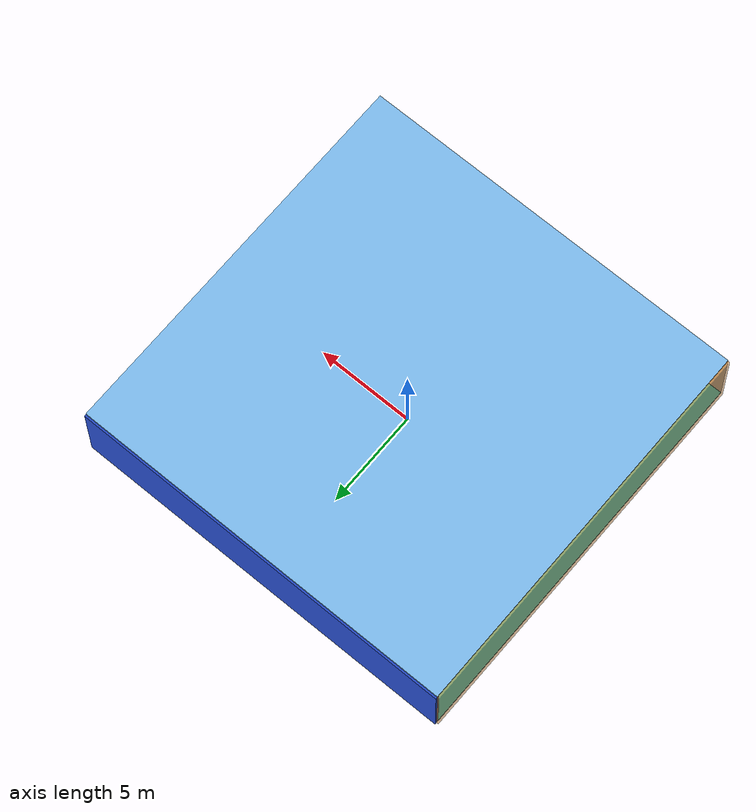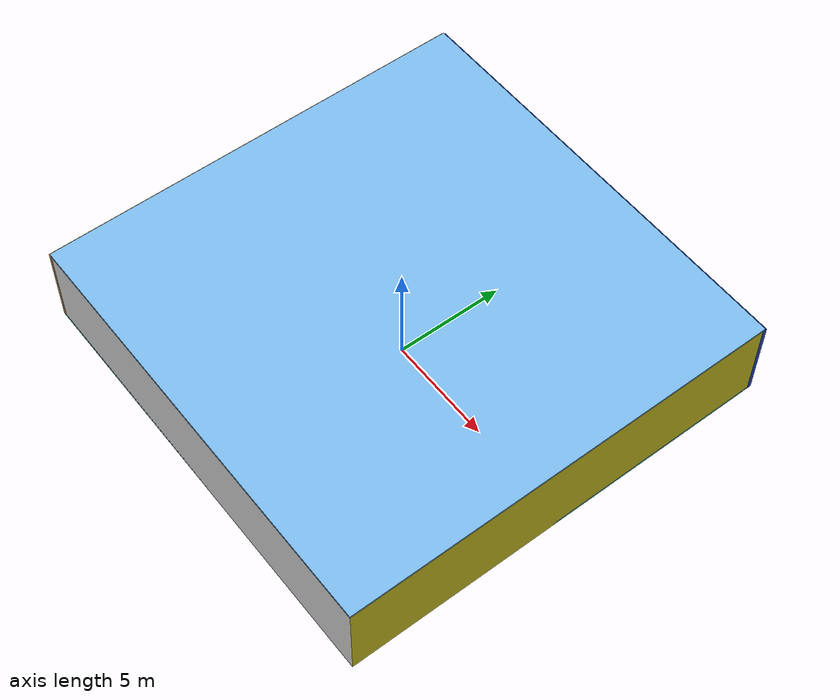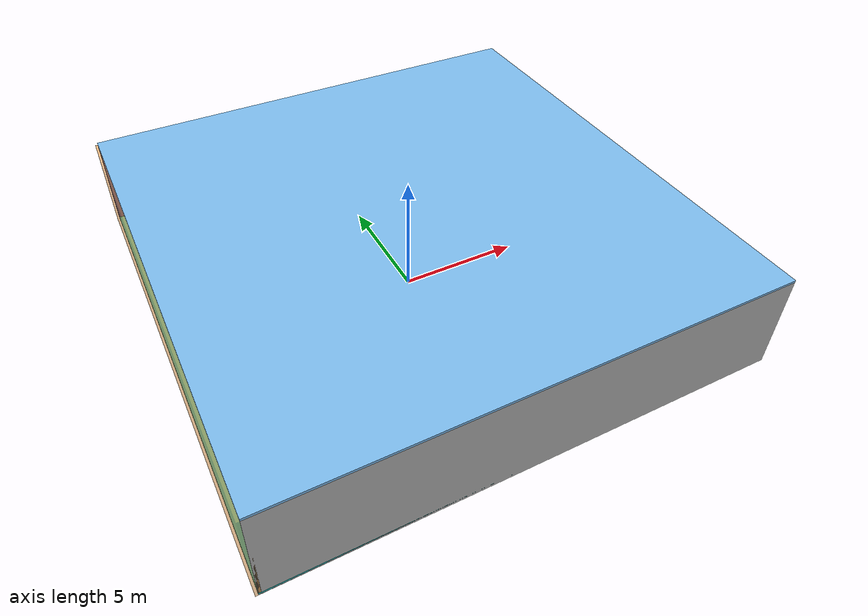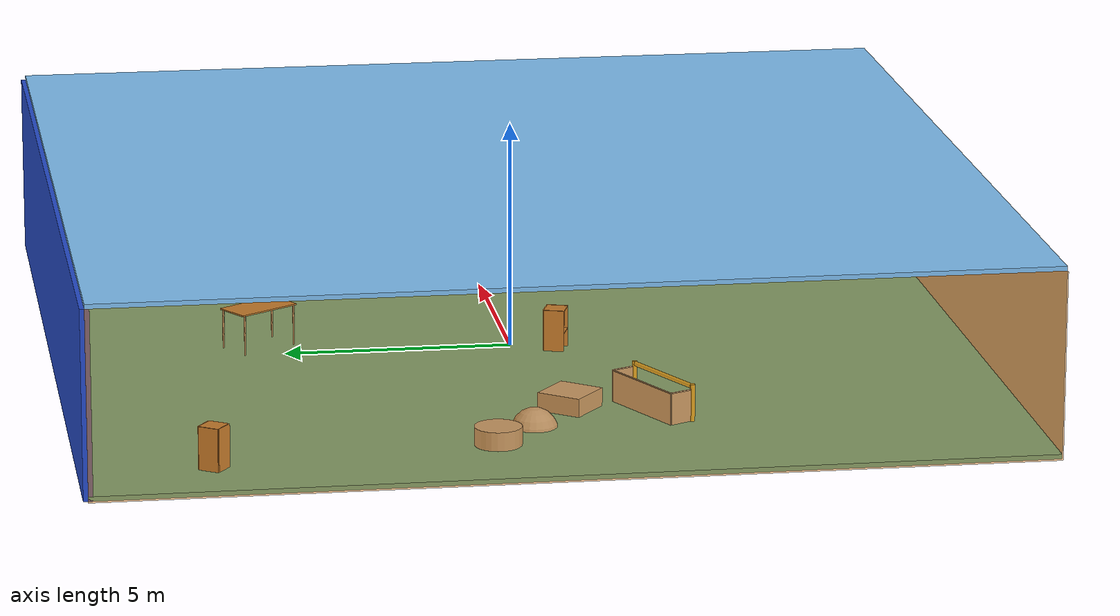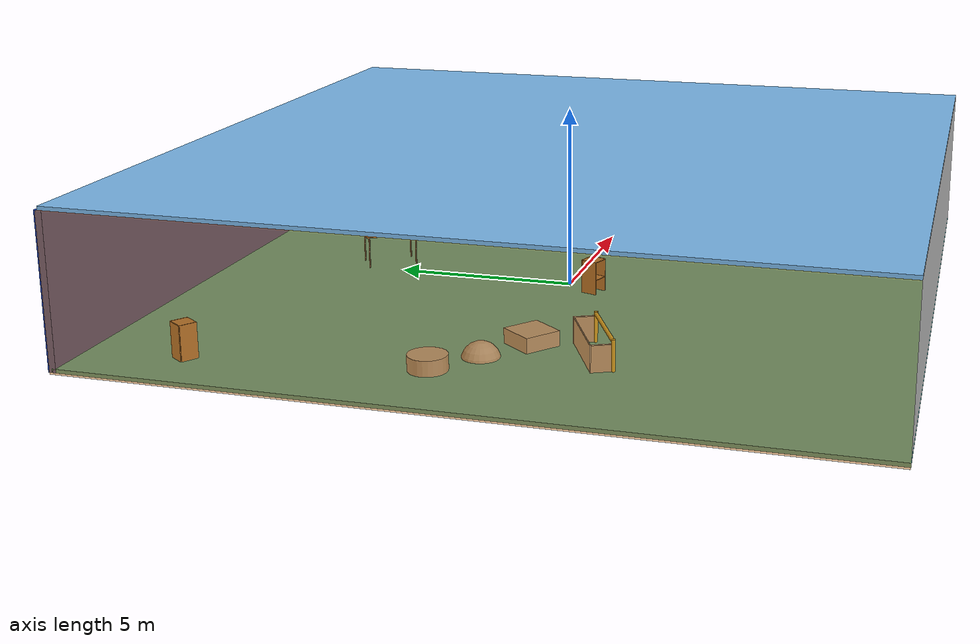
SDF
<sdf version="1.4">
 <world name="default">
  <physics type="ode">
   <max_step_size>0.001</max_step_size>
   <real_time_factor>1</real_time_factor>
   <real_time_update_rate>1000</real_time_update_rate>
   <gravity>0 0 -9.8</gravity>
  </physics>
  <scene><ambient>0.4 0.4 0.4 1</ambient><background>0.7 0.7 0.7 1</background><shadows>1</shadows></scene>
  <model name="Surrounding">
   <static>1</static>
   <link name="Ceiling">
    <collision name="Ceiling_Collision"><geometry><box><size>20 20 0.1</size></box></geometry></collision>
    <visual name="Ceiling_Visual">
     <geometry><box><size>20 20 0.1</size></box></geometry>
     <material>
      <script><uri>file://media/materials/scripts/gazebo.material</uri><name>Gazebo/SkyBlue</name></script>
     </material>
    </visual>
    <pose>0 0 4.05 0 0 0</pose>
   </link>
   <link name="Wall_South">
    <collision name="Wall_South_Collision">
     <geometry><box><size>20 0 4</size></box></geometry>
     <pose>0 0 2 0 -0 0</pose>
    </collision>
    <visual name="Wall_South_Visual">
     <pose>0 0 2 0 -0 0</pose>
     <geometry><box><size>20 0 4</size></box></geometry>
     <material>
      <script><uri>file://media/materials/scripts/gazebo.material</uri><name>Gazebo/LightOff</name></script>
     </material>
    </visual>
    <velocity_decay><linear>0</linear><angular>0</angular></velocity_decay>
    <pose>0 -10 0 0 -0 0</pose>
   </link>
   <link name="Wall_East">
    <collision name="Wall_21_Collision">
     <geometry><box><size>20 0 4</size></box></geometry>
     <pose>0 0 2 0 -0 0</pose>
    </collision>
    <visual name="Wall_21_Visual">
     <pose>0 0 2 0 -0 0</pose>
     <geometry><box><size>20 0 4</size></box></geometry>
     <material>
      <script><uri>file://media/materials/scripts/gazebo.material</uri><name>Gazebo/YellowGlow</name></script>
     </material>
    </visual>
    <velocity_decay><linear>0</linear><angular>0</angular></velocity_decay>
    <pose>10 0 0 0 -0 1.5708</pose>
   </link>
   <link name="Wall_North">
    <collision name="Wall_22_Collision">
     <geometry><box><size>20 0.2 4</size></box></geometry>
     <pose>0 0 2 0 -0 0</pose>
    </collision>
    <visual name="Wall_22_Visual">
     <pose>0 0 2 0 -0 0</pose>
     <geometry><box><size>20 0.2 4</size></box></geometry>
     <material>
      <script><uri>file://media/materials/scripts/gazebo.material</uri><name>Gazebo/Blue</name></script>
     </material>
    </visual>
    <velocity_decay><linear>0</linear><angular>0</angular></velocity_decay>
    <pose>0 10 0 0 -0 0</pose>
   </link>
   <link name="Wall_West">
    <collision name="Wall_23_Collision">
     <geometry><box><size>20 0.2 4</size></box></geometry>
     <pose>0 0 2 0 -0 0</pose>
    </collision>
    <visual name="Wall_23_Visual">
     <pose>0 0 2 0 -0 0</pose>
     <geometry><box><size>20 0.2 4</size></box></geometry>
     <material>
      <script>
       <uri>file://media/materials/scripts/gazebo.material</uri>
       <name>Gazebo/OrangeTransparent</name>
      </script>
     </material>
    </visual>
    <velocity_decay><linear>0</linear><angular>0</angular></velocity_decay>
    <pose>-10 0 0 0 0 -1.5708</pose>
   </link>
   <link name="Ground_link">
    <collision name="collision">
     <pose>0 0 .05 0 -0 0</pose>
     <geometry><box><size>20 20 0.1</size></box></geometry>
    </collision>
    <visual name="visual">
     <pose>0 0 .05 0 -0 0</pose>
     <geometry><box><size>20 20 0.1</size></box></geometry>
     <material>
      <script><uri>file://media/materials/scripts/gazebo.material</uri><name>Gazebo/Turquoise</name></script>
     </material>
    </visual>
   </link>
   <static>1</static>
  </model>
  <spherical_coordinates>
   <surface_model>EARTH_WGS84</surface_model>
   <latitude_deg>0</latitude_deg>
   <longitude_deg>0</longitude_deg>
   <elevation>0</elevation>
   <heading_deg>0</heading_deg>
  </spherical_coordinates>
  <light name="lightball_0" type="diffuse">
   <diffuse>0.8 0.8 0.8 1</diffuse>
   <specular>0.2 0.2 0.2 1</specular>
   <attenuation>
    <range>100</range>
    <constant>0.7</constant>
    <linear>0.01</linear>
    <quadratic>0.001</quadratic>
   </attenuation>
   <direction>-0.5 0.1 -0.9</direction>
   <pose>0.120564184121 0.156415062477 1.62685884706 0 0 0</pose>
  </light>
  <light name="lightball_1" type="diffuse">
   <diffuse>0.8 0.8 0.8 1</diffuse>
   <specular>0.2 0.2 0.2 1</specular>
   <attenuation>
    <range>100</range>
    <constant>0.7</constant>
    <linear>0.01</linear>
    <quadratic>0.001</quadratic>
   </attenuation>
   <direction>-0.5 0.1 -0.9</direction>
   <pose>8.41129523897 1.55225592189 0.931085236082 0 0 0</pose>
  </light>
  <light name="lightball_2" type="diffuse">
   <diffuse>0.8 0.8 0.8 1</diffuse>
   <specular>0.2 0.2 0.2 1</specular>
   <attenuation>
    <range>100</range>
    <constant>0.7</constant>
    <linear>0.01</linear>
    <quadratic>0.001</quadratic>
   </attenuation>
   <direction>-0.5 0.1 -0.9</direction>
   <pose>-1.83214279388 -0.443137406834 1.14069725064 0 0 0</pose>
  </light>
  <light name="lightball_3" type="diffuse">
   <diffuse>0.8 0.8 0.8 1</diffuse>
   <specular>0.2 0.2 0.2 1</specular>
   <attenuation>
    <range>100</range>
    <constant>0.7</constant>
    <linear>0.01</linear>
    <quadratic>0.001</quadratic>
   </attenuation>
   <direction>-0.5 0.1 -0.9</direction>
   <pose>-8.35254048172 -0.521042845749 1.20575113459 0 0 0</pose>
  </light>
  <light name="lightball_4" type="diffuse">
   <diffuse>0.8 0.8 0.8 1</diffuse>
   <specular>0.2 0.2 0.2 1</specular>
   <attenuation>
    <range>100</range>
    <constant>0.7</constant>
    <linear>0.01</linear>
    <quadratic>0.001</quadratic>
   </attenuation>
   <direction>-0.5 0.1 -0.9</direction>
   <pose>-9.14398208152 -2.13500376426 2.96275192318 0 0 0</pose>
  </light>
  <light name="lightball_5" type="diffuse">
   <diffuse>0.8 0.8 0.8 1</diffuse>
   <specular>0.2 0.2 0.2 1</specular>
   <attenuation>
    <range>100</range>
    <constant>0.7</constant>
    <linear>0.01</linear>
    <quadratic>0.001</quadratic>
   </attenuation>
   <direction>-0.5 0.1 -0.9</direction>
   <pose>6.0427565949 -1.41849852615 2.18613167909 0 0 0</pose>
  </light>
  <light name="lightball_6" type="diffuse">
   <diffuse>0.8 0.8 0.8 1</diffuse>
   <specular>0.2 0.2 0.2 1</specular>
   <attenuation>
    <range>100</range>
    <constant>0.7</constant>
    <linear>0.01</linear>
    <quadratic>0.001</quadratic>
   </attenuation>
   <direction>-0.5 0.1 -0.9</direction>
   <pose>1.91132976906 -4.08569663113 2.77279788509 0 0 0</pose>
  </light>
  <light name="lightball_7" type="diffuse">
   <diffuse>0.8 0.8 0.8 1</diffuse>
   <specular>0.2 0.2 0.2 1</specular>
   <attenuation>
    <range>100</range>
    <constant>0.7</constant>
    <linear>0.01</linear>
    <quadratic>0.001</quadratic>
   </attenuation>
   <direction>-0.5 0.1 -0.9</direction>
   <pose>-8.41922635106 -4.16220070748 2.30707270665 0 0 0</pose>
  </light>
  <light name="lightball_8" type="diffuse">
   <diffuse>0.8 0.8 0.8 1</diffuse>
   <specular>0.2 0.2 0.2 1</specular>
   <attenuation>
    <range>100</range>
    <constant>0.7</constant>
    <linear>0.01</linear>
    <quadratic>0.001</quadratic>
   </attenuation>
   <direction>-0.5 0.1 -0.9</direction>
   <pose>-6.93043471987 2.09421502522 3.33193865149 0 0 0</pose>
  </light>
  <light name="lightball_9" type="diffuse">
   <diffuse>0.8 0.8 0.8 1</diffuse>
   <specular>0.2 0.2 0.2 1</specular>
   <attenuation>
    <range>100</range>
    <constant>0.7</constant>
    <linear>0.01</linear>
    <quadratic>0.001</quadratic>
   </attenuation>
   <direction>-0.5 0.1 -0.9</direction>
   <pose>-1.69379217311 9.09301782813 1.58541685633 0 0 0</pose>
  </light>
  <light name="lightball_10" type="diffuse">
   <diffuse>0.8 0.8 0.8 1</diffuse>
   <specular>0.2 0.2 0.2 1</specular>
   <attenuation>
    <range>100</range>
    <constant>0.7</constant>
    <linear>0.01</linear>
    <quadratic>0.001</quadratic>
   </attenuation>
   <direction>-0.5 0.1 -0.9</direction>
   <pose>5.5917020928 1.80973425507 2.80842126127 0 0 0</pose>
  </light>
  <light name="lightball_11" type="diffuse">
   <diffuse>0.8 0.8 0.8 1</diffuse>
   <specular>0.2 0.2 0.2 1</specular>
   <attenuation>
    <range>100</range>
    <constant>0.7</constant>
    <linear>0.01</linear>
    <quadratic>0.001</quadratic>
   </attenuation>
   <direction>-0.5 0.1 -0.9</direction>
   <pose>0.461540340055 -5.6590833392 3.67368084761 0 0 0</pose>
  </light>
  <include>
   <uri>model://textured_shapes</uri>
   <pose>-6.48390825542 0.43420460743 0 0 0 0.900298011053</pose>
  </include>
  <include><uri>model://cabinet</uri><pose>-8.44441708458 7.32204304538 0 0 0 2.53585431375</pose></include>
  <include>
   <uri>model://robocup_3Dsim_goal</uri>
   <pose>-5.63988901232 -2.43937610797 0 0 0 2.02317530704</pose>
  </include>
  <include><uri>model://cabinet</uri><pose>-0.761634548595 -0.896101755888 0 0 0 1.23329886416</pose></include>
  <include><uri>model://table</uri><pose>0.344237280784 5.5342817862 0 0 0 2.14407322986</pose></include>
  <include><uri>model://table</uri><pose>5.57815213167 -6.48033671661 0 0 0 0.179102055324</pose></include>
  <include>
   <uri>model://robocup_3Dsim_goal</uri>
   <pose>7.7297169014 1.5952102717 0 0 0 2.35970423729</pose>
  </include>
 </world>
</sdf>

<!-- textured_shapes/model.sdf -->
<sdf version="1.6">
  <model name="textured_shapes">
    <pose>0 0 0.5 0 0 0</pose>
    <link name="box">
      <pose>0 -1.5 0 0 0 0</pose>
      <collision name="collision">
        <geometry>
          <box>
            <size>1 1 1</size>
          </box>
        </geometry>
      </collision>
      <visual name="visual">
        <geometry>
          <box>
            <size>1 1 1</size>
          </box>
        </geometry>
        <material>
          <script>
            <uri>model://../model_source/models/textured_shapes/materials/scripts</uri>
            <uri>model://../model_source/models/textured_shapes/materials/textures</uri>
            <name>TexturedShape/Squares</name>
          </script>
        </material>
      </visual>
    </link>
    <link name="sphere">
      <collision name="collision">
        <geometry>
          <sphere>
            <radius>0.5</radius>
          </sphere>
        </geometry>
      </collision>
      <visual name="visual">
        <geometry>
          <sphere>
            <radius>0.5</radius>
          </sphere>
        </geometry>
        <material>
          <script>
            <uri>model://../model_source/models/textured_shapes/materials/scripts</uri>
            <uri>model://../model_source/models/textured_shapes/materials/textures</uri>
            <name>TexturedShape/Squares</name>
          </script>
        </material>
      </visual>
    </link>
    <link name="cylinder">
      <pose>0 1.5 0 0 0 0</pose>
      <collision name="collision">
        <geometry>
          <cylinder>
            <radius>0.5</radius>
            <length>1</length>
          </cylinder>
        </geometry>
      </collision>
      <visual name="visual">
        <geometry>
          <cylinder>
            <radius>0.5</radius>
            <length>1</length>
          </cylinder>
        </geometry>
        <material>
          <script>
            <uri>model://../model_source/models/textured_shapes/materials/scripts</uri>
            <uri>model://../model_source/models/textured_shapes/materials/textures</uri>
            <name>TexturedShape/Squares</name>
          </script>
        </material>
      </visual>
    </link>
  </model>
</sdf>

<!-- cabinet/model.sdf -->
<sdf version="1.5">
  <model name="cabinet">
    <static>true</static>
    <link name="cabinet_bottom_plate">
      <inertial>
        <pose>0 0 -1 0 0 0</pose>
        <inertia>
          <ixx>2.050000</ixx>
          <ixy>0</ixy>
          <ixz>0</ixz>
          <iyy>2.050000</iyy>
          <iyz>0</iyz>
          <izz>2.050000</izz>
        </inertia>
        <mass>25.000000</mass>
      </inertial>
      <collision name="cabinet_bottom_plate_geom">
        <pose>0 0 0.010000 0 0 0</pose>
        <geometry>
          <box>
            <size>0.450000 0.450000 0.020000</size>
          </box>
        </geometry>
      </collision>
      <visual name="cabinet_bottom_plate_geom_visual">
        <pose>0 0 0.010000 0 0 0</pose>
        <geometry>
          <box>
            <size>0.450000 0.450000 0.020000</size>
          </box>
        </geometry>
        <material>
          <script>
            <uri>model://media/materials/scripts/gazebo.material</uri>
            <name>Gazebo/Wood</name>
          </script>
        </material>
      </visual>
      <collision name="cabinet_bottom_plate_geom_cabinet_back_plate">
        <pose>0.235000 0 0.510000 0 0 0</pose>
        <geometry>
          <box>
            <size>0.020000 0.450000 1.020000</size>
          </box>
        </geometry>
      </collision>
      <visual name="cabinet_bottom_plate_geom_cabinet_back_plate_visual">
        <pose>0.235000 0 0.510000 0 0 0</pose>
        <geometry>
          <box>
            <size>0.020000 0.450000 1.020000</size>
          </box>
        </geometry>
        <material>
          <script>
            <uri>model://media/materials/scripts/gazebo.material</uri>
            <name>Gazebo/Wood</name>
          </script>
        </material>
      </visual>
      <collision name="cabinet_bottom_plate_geom_cabinet_left_plate">
        <pose>0 0.235000 0.510000 0 0 0</pose>
        <geometry>
          <box>
            <size>0.450000 0.020000 1.020000</size>
          </box>
        </geometry>
      </collision>
      <visual name="cabinet_bottom_plate_geom_cabinet_left_plate_visual">
        <pose>0 0.235000 0.510000 0 0 0</pose>
        <geometry>
          <box>
            <size>0.450000 0.020000 1.020000</size>
          </box>
        </geometry>
        <material>
          <script>
            <uri>model://media/materials/scripts/gazebo.material</uri>
            <name>Gazebo/Wood</name>
          </script>
        </material>
      </visual>
      <collision name="cabinet_bottom_plate_geom_cabinet_middle_plate">
        <pose>0 0 0.510000 0 0 0</pose>
        <geometry>
          <box>
            <size>0.450000 0.450000 0.020000</size>
          </box>
        </geometry>
      </collision>
      <visual name="cabinet_bottom_plate_geom_cabinet_middle_plate_visual">
        <pose>0 0 0.510000 0 0 0</pose>
        <geometry>
          <box>
            <size>0.450000 0.450000 0.020000</size>
          </box>
        </geometry>
        <material>
          <script>
            <uri>model://media/materials/scripts/gazebo.material</uri>
            <name>Gazebo/Wood</name>
          </script>
        </material>
      </visual>
      <collision name="cabinet_bottom_plate_geom_cabinet_right_plate">
        <pose>0 -0.235000 0.510000 0 0 0</pose>
        <geometry>
          <box>
            <size>0.450000 0.020000 1.020000</size>
          </box>
        </geometry>
      </collision>
      <visual name="cabinet_bottom_plate_geom_cabinet_right_plate_visual">
        <pose>0 -0.235000 0.510000 0 0 0</pose>
        <geometry>
          <box>
            <size>0.450000 0.020000 1.020000</size>
          </box>
        </geometry>
        <material>
          <script>
            <uri>model://media/materials/scripts/gazebo.material</uri>
            <name>Gazebo/Wood</name>
          </script>
        </material>
      </visual>
      <collision name="cabinet_bottom_plate_geom_cabinet_top_plate">
        <pose>0 0 1.010000 0 0 0</pose>
        <geometry>
          <box>
            <size>0.450000 0.450000 0.020000</size>
          </box>
        </geometry>
      </collision>
      <visual name="cabinet_bottom_plate_geom_cabinet_top_plate_visual">
        <pose>0 0 1.010000 0 0 0</pose>
        <geometry>
          <box>
            <size>0.450000 0.450000 0.020000</size>
          </box>
        </geometry>
        <material>
          <script>
            <uri>model://media/materials/scripts/gazebo.material</uri>
            <name>Gazebo/Wood</name>
          </script>
        </material>
      </visual>
    </link>
  </model>
</sdf>

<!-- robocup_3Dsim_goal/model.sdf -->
<sdf version="1.5">
  <model name="robocup_3d_goal">
    <static>true</static>
    <link name="left_post">
      <pose>0 1.05 0.45 0 0 0</pose>
      <collision name="collision">
        <geometry>
          <cylinder>
            <radius>0.05</radius>
            <length>0.9</length>
          </cylinder>
        </geometry>
      </collision>
      <visual name="visual">
        <geometry>
          <cylinder>
            <radius>0.05</radius>
            <length>0.9</length>
          </cylinder>
        </geometry>
        <material>
          <script>
            <uri>file://media/materials/scripts/gazebo.material</uri>
            <name>Gazebo/ZincYellow</name>
          </script>
        </material>
      </visual>
    </link>
    <link name="left_support_horiz_lower">
      <pose>0.30 1.05 0.01 0 0 0</pose>
      <collision name="collision">
        <geometry>
          <box>
            <size>0.50 0.02 0.02</size>
          </box>
        </geometry>
      </collision>
      <visual name="visual">
        <geometry>
          <box>
            <size>0.50 0.02 0.02</size>
          </box>
        </geometry>
        <material>
          <script>
            <uri>file://media/materials/scripts/gazebo.material</uri>
            <name>Gazebo/White</name>
          </script>
        </material>
      </visual>
    </link>
    <link name="left_support_horiz_upper">
      <pose>0.30 1.05 0.79 0 0 0</pose>
      <collision name="collision">
        <geometry>
          <box>
            <size>0.50 0.02 0.02</size>
          </box>
        </geometry>
      </collision>
      <visual name="visual">
        <geometry>
          <box>
            <size>0.50 0.02 0.02</size>
          </box>
        </geometry>
        <material>
          <script>
            <uri>file://media/materials/scripts/gazebo.material</uri>
            <name>Gazebo/White</name>
          </script>
        </material>
      </visual>
    </link>
    <link name="left_support_vertical">
      <pose>0.56 1.05 0.4 0 1.5708 0</pose>
      <collision name="collision">
        <geometry>
          <box>
            <size>0.80 0.02 0.02</size>
          </box>
        </geometry>
      </collision>
      <visual name="visual">
        <geometry>
          <box>
            <size>0.80 0.02 0.02</size>
          </box>
        </geometry>
        <material>
          <script>
            <uri>file://media/materials/scripts/gazebo.material</uri>
            <name>Gazebo/White</name>
          </script>
        </material>
      </visual>
    </link>
    <link name="right_support_horiz_lower">
      <pose>0.30 -1.05 0.01 0 0 0</pose>
      <collision name="collision">
        <geometry>
          <box>
            <size>0.50 0.02 0.02</size>
          </box>
        </geometry>
      </collision>
      <visual name="visual">
        <geometry>
          <box>
            <size>0.50 0.02 0.02</size>
          </box>
        </geometry>
        <material>
          <script>
            <uri>file://media/materials/scripts/gazebo.material</uri>
            <name>Gazebo/White</name>
          </script>
        </material>
      </visual>
    </link>
    <link name="right_support_horiz_upper">
      <pose>0.30 -1.05 0.79 0 0 0</pose>
      <collision name="collision">
        <geometry>
          <box>
            <size>0.50 0.02 0.02</size>
          </box>
        </geometry>
      </collision>
      <visual name="visual">
        <geometry>
          <box>
            <size>0.50 0.02 0.02</size>
          </box>
        </geometry>
        <material>
          <script>
            <uri>file://media/materials/scripts/gazebo.material</uri>
            <name>Gazebo/White</name>
          </script>
        </material>
      </visual>
    </link>
    <link name="right_support_vertical">
      <pose>0.56 -1.05 0.4 0 1.5708 0</pose>
      <collision name="collision">
        <geometry>
          <box>
            <size>0.80 0.02 0.02</size>
          </box>
        </geometry>
      </collision>
      <visual name="visual">
        <geometry>
          <box>
            <size>0.80 0.02 0.02</size>
          </box>
        </geometry>
        <material>
          <script>
            <uri>file://media/materials/scripts/gazebo.material</uri>
            <name>Gazebo/White</name>
          </script>
        </material>
      </visual>
    </link>
    <link name="center_support_horiz_lower">
      <pose>0.56 0 0.01 0 1.5708 0</pose>
      <collision name="collision">
        <geometry>
          <box>
            <size>0.02 2.08 0.02</size>
          </box>
        </geometry>
      </collision>
      <visual name="visual">
        <geometry>
          <box>
            <size>0.02 2.08 0.02</size>
          </box>
        </geometry>
        <material>
          <script>
            <uri>file://media/materials/scripts/gazebo.material</uri>
            <name>Gazebo/White</name>
          </script>
        </material>
      </visual>
    </link>
    <link name="center_support_horiz_upper">
      <pose>0.56 0 0.79 0 1.5708 0</pose>
      <collision name="collision">
        <geometry>
          <box>
            <size>0.02 2.08 0.02</size>
          </box>
        </geometry>
      </collision>
      <visual name="visual">
        <geometry>
          <box>
            <size>0.02 2.08 0.02</size>
          </box>
        </geometry>
        <material>
          <script>
            <uri>file://media/materials/scripts/gazebo.material</uri>
            <name>Gazebo/White</name>
          </script>
        </material>
      </visual>
    </link>
    <link name="right_post">
      <pose>0 -1.05 0.45 0 0 0</pose>
      <collision name="collision">
        <geometry>
          <cylinder>
            <radius>0.05</radius>
            <length>0.9</length>
          </cylinder>
        </geometry>
      </collision>
      <visual name="visual">
        <geometry>
          <cylinder>
            <radius>0.05</radius>
            <length>0.9</length>
          </cylinder>
        </geometry>
        <material>
          <script>
            <uri>file://media/materials/scripts/gazebo.material</uri>
            <name>Gazebo/ZincYellow</name>
          </script>
        </material>
      </visual>
    </link>
    <link name="crossbar">
      <pose>0 0 0.85 1.57 1.57 0</pose>
      <collision name="collision">
        <geometry>
          <cylinder>
            <radius>0.05</radius>
            <length>2.0</length>
          </cylinder>
        </geometry>
      </collision>
      <visual name="visual">
        <geometry>
          <cylinder>
            <radius>0.05</radius>
            <length>2.0</length>
          </cylinder>
        </geometry>
        <material>
          <script>
            <uri>file://media/materials/scripts/gazebo.material</uri>
            <name>Gazebo/ZincYellow</name>
          </script>
        </material>
      </visual>
    </link>
    <link name="center_net">
      <pose>0.56 0 0.40 0 0 0</pose>
      <collision name="collision">
        <geometry>
          <box>
            <size>0.01 2.1 0.80</size>
          </box>
        </geometry>
      </collision>
      <visual name="visual">
        <geometry>
          <box>
            <size>0.01 2.1 0.80</size>
          </box>
        </geometry>
        <material>
          <script>
            <uri>model://../model_source/models/robocup09_spl_field/materials/scripts/</uri>
            <uri>model://../model_source/models/robocup09_spl_field/materials/textures/</uri>
            <name>RoboCup/Net</name>
          </script>
        </material>
      </visual>
    </link>
    <link name="left_net">
      <pose>0.30 1.05 0.40 0 0 0</pose>
      <collision name="collision">
        <geometry>
          <box>
            <size>0.50 0.01 0.76</size>
          </box>
        </geometry>
      </collision>
      <visual name="visual">
        <geometry>
          <box>
            <size>0.50 0.01 0.76</size>
          </box>
        </geometry>
        <material>
          <script>
            <uri>model://../model_source/models/robocup09_spl_field/materials/scripts/</uri>
            <uri>model://../model_source/models/robocup09_spl_field/materials/textures/</uri>
            <name>RoboCup/Net</name>
          </script>
        </material>
      </visual>
    </link>
    <link name="right_net">
      <pose>0.30 -1.05 0.40 0 0 0</pose>
      <collision name="collision">
        <geometry>
          <box>
            <size>0.50 0.01 0.76</size>
          </box>
        </geometry>
      </collision>
      <visual name="visual">
        <geometry>
          <box>
            <size>0.50 0.01 0.76</size>
          </box>
        </geometry>
        <material>
          <script>
            <uri>model://../model_source/models/robocup09_spl_field/materials/scripts/</uri>
            <uri>model://../model_source/models/robocup09_spl_field/materials/textures/</uri>
            <name>RoboCup/Net</name>
          </script>
        </material>
      </visual>
    </link>
  </model>
</sdf>

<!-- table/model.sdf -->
<sdf version="1.5">
  <model name="table">
    <static>true</static>
    <link name="link">
      <collision name="surface">
        <pose>0 0 1.0 0 0 0</pose>
        <geometry>
          <box>
            <size>1.5 0.8 0.03</size>
          </box>
        </geometry>
        <surface>
          <friction>
            <ode>
              <mu>0.6</mu>
              <mu2>0.6</mu2>
            </ode>
          </friction>
        </surface>
      </collision>
      <visual name="visual1">
        <pose>0 0 1.0 0 0 0</pose>
        <geometry>
          <box>
            <size>1.5 0.8 0.03</size>
          </box>
        </geometry>
        <material>
          <script>
            <uri>model://media/materials/scripts/gazebo.material</uri>
            <name>Gazebo/Wood</name>
          </script>
        </material>
      </visual>
      <collision name="front_left_leg">
        <pose>0.68 0.38 0.5 0 0 0</pose>
        <geometry>
          <cylinder>
            <radius>0.02</radius>
            <length>1.0</length>
          </cylinder>
        </geometry>
      </collision>
      <visual name="front_left_leg">
        <pose>0.68 0.38 0.5 0 0 0</pose>
        <geometry>
          <cylinder>
            <radius>0.02</radius>
            <length>1.0</length>
          </cylinder>
        </geometry>
        <material>
          <script>
            <uri>model://media/materials/scripts/gazebo.material</uri>
            <name>Gazebo/Grey</name>
          </script>
        </material>
      </visual>
      <collision name="front_right_leg">
        <pose>0.68 -0.38 0.5 0 0 0</pose>
        <geometry>
          <cylinder>
            <radius>0.02</radius>
            <length>1.0</length>
          </cylinder>
        </geometry>
      </collision>
      <visual name="front_right_leg">
        <pose>0.68 -0.38 0.5 0 0 0</pose>
        <geometry>
          <cylinder>
            <radius>0.02</radius>
            <length>1.0</length>
          </cylinder>
        </geometry>
        <material>
          <script>
            <uri>model://media/materials/scripts/gazebo.material</uri>
            <name>Gazebo/Grey</name>
          </script>
        </material>
      </visual>
      <collision name="back_right_leg">
        <pose>-0.68 -0.38 0.5 0 0 0</pose>
        <geometry>
          <cylinder>
            <radius>0.02</radius>
            <length>1.0</length>
          </cylinder>
        </geometry>
      </collision>
      <visual name="back_right_leg">
        <pose>-0.68 -0.38 0.5 0 0 0</pose>
        <geometry>
          <cylinder>
            <radius>0.02</radius>
            <length>1.0</length>
          </cylinder>
        </geometry>
        <material>
          <script>
            <uri>model://media/materials/scripts/gazebo.material</uri>
            <name>Gazebo/Grey</name>
          </script>
        </material>
      </visual>
      <collision name="back_left_leg">
        <pose>-0.68 0.38 0.5 0 0 0</pose>
        <geometry>
          <cylinder>
            <radius>0.02</radius>
            <length>1.0</length>
          </cylinder>
        </geometry>
      </collision>
      <visual name="back_left_leg">
        <pose>-0.68 0.38 0.5 0 0 0</pose>
        <geometry>
          <cylinder>
            <radius>0.02</radius>
            <length>1.0</length>
          </cylinder>
        </geometry>
        <material>
          <script>
            <uri>model://media/materials/scripts/gazebo.material</uri>
            <name>Gazebo/Grey</name>
          </script>
        </material>
      </visual>
    </link>
  </model>
</sdf>
